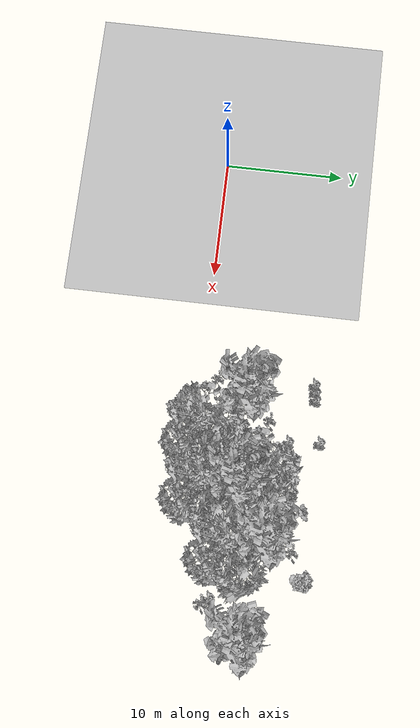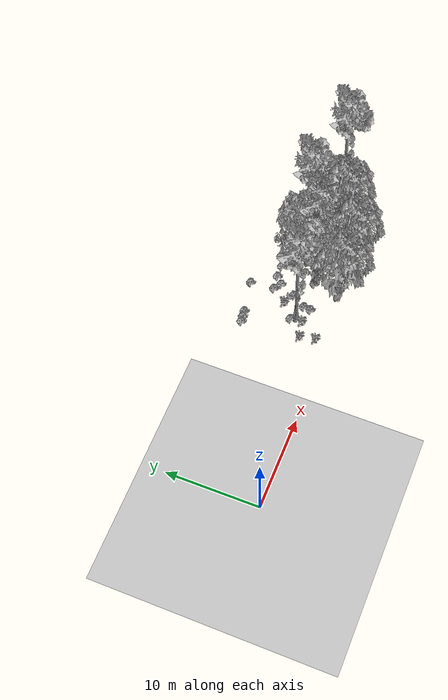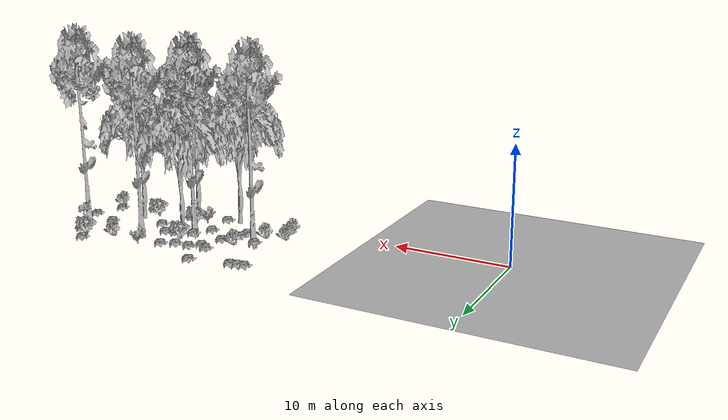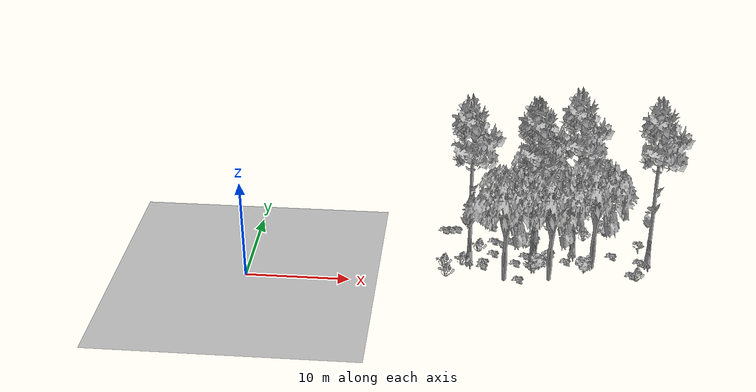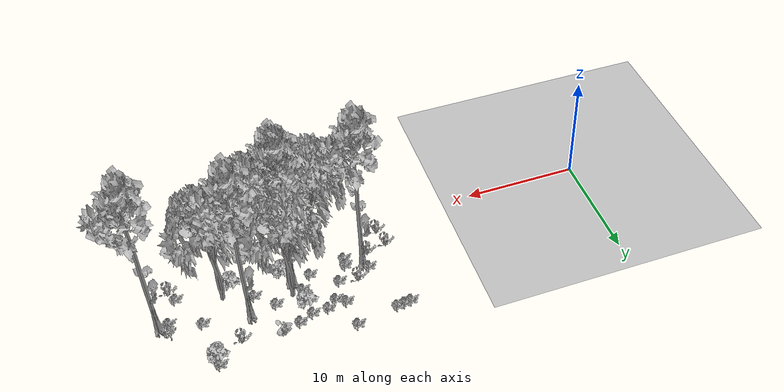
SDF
<sdf version="1.7">
 <world name="default">
  <model name="ground_plane">
   <static>1</static>
   <link name="link">
    <collision name="collision">
     <pose>-50 0 0 0 -0 0</pose>
     <geometry><plane><normal>0 0 1</normal><size>80 80</size></plane></geometry>
     <surface><contact><ode><min_depth>0.01</min_depth><max_vel>0</max_vel></ode></contact></surface>
    </collision>
    <visual name="grass">
     <cast_shadows>0</cast_shadows>
     <geometry>
      <mesh>
       <scale>0.46714285714285714 0.46714285714285714 0.1</scale>
       <uri>file://grass_plane/meshes/grass_plane.dae</uri>
      </mesh>
     </geometry>
    </visual>
   </link>
  </model>
  <model name="Tree 135">
   <static>1</static>
   <pose>33.02459482543969 3.914709650286497 0 1.57079 -0 0</pose>
   <link name="link">
    <collision name="collision">
     <geometry><mesh><scale>3.5 5 3.5</scale><uri>model://tree_2/meshes/tree_2.obj</uri></mesh></geometry>
    </collision>
    <visual name="visual">
     <geometry><mesh><scale>3.5 5 3.5</scale><uri>model://tree_2/meshes/tree_2.obj</uri></mesh></geometry>
    </visual>
   </link>
  </model>
  <model name="Tree 212">
   <static>1</static>
   <pose>21.272354102123536 4.31875726385158 0 1.57079 -0 0</pose>
   <link name="link">
    <collision name="collision">
     <geometry><mesh><scale>3.5 5 3.5</scale><uri>model://tree_9/meshes/tree_9.obj</uri></mesh></geometry>
    </collision>
    <visual name="visual">
     <geometry><mesh><scale>3.5 5 3.5</scale><uri>model://tree_9/meshes/tree_9.obj</uri></mesh></geometry>
    </visual>
   </link>
  </model>
  <model name="Tree 239">
   <static>1</static>
   <pose>31.347908272735964 6.564906676583853 0 1.57079 -0 0</pose>
   <link name="link">
    <collision name="collision">
     <geometry><mesh><scale>3.5 5 3.5</scale><uri>model://tree_9/meshes/tree_9.obj</uri></mesh></geometry>
    </collision>
    <visual name="visual">
     <geometry><mesh><scale>3.5 5 3.5</scale><uri>model://tree_9/meshes/tree_9.obj</uri></mesh></geometry>
    </visual>
   </link>
  </model>
  <model name="Tree 269">
   <static>1</static>
   <pose>38.54994354440663 5.279831843803549 0 1.57079 -0 0</pose>
   <link name="link">
    <collision name="collision">
     <geometry><mesh><scale>3.5 5 3.5</scale><uri>model://tree_9/meshes/tree_9.obj</uri></mesh></geometry>
    </collision>
    <visual name="visual">
     <geometry><mesh><scale>3.5 5 3.5</scale><uri>model://tree_9/meshes/tree_9.obj</uri></mesh></geometry>
    </visual>
   </link>
  </model>
  <model name="Tree 424">
   <static>1</static>
   <pose>27.507316173532317 4.1406866113874585 0 1.57079 -0 0</pose>
   <link name="link">
    <collision name="collision">
     <geometry><mesh><scale>3.5 5 3.5</scale><uri>model://tree_9/meshes/tree_9.obj</uri></mesh></geometry>
    </collision>
    <visual name="visual">
     <geometry><mesh><scale>3.5 5 3.5</scale><uri>model://tree_9/meshes/tree_9.obj</uri></mesh></geometry>
    </visual>
   </link>
  </model>
  <model name="Tree 468">
   <static>1</static>
   <pose>27.314680647240678 4.375040638981993 0 1.57079 -0 0</pose>
   <link name="link">
    <collision name="collision">
     <geometry><mesh><scale>3.5 5 3.5</scale><uri>model://tree_9/meshes/tree_9.obj</uri></mesh></geometry>
    </collision>
    <visual name="visual">
     <geometry><mesh><scale>3.5 5 3.5</scale><uri>model://tree_9/meshes/tree_9.obj</uri></mesh></geometry>
    </visual>
   </link>
  </model>
  <model name="Tree 510">
   <static>1</static>
   <pose>27.550290301177284 5.5813447568156676 0 1.57079 -0 0</pose>
   <link name="link">
    <collision name="collision">
     <geometry><mesh><scale>3.5 5 3.5</scale><uri>model://tree_2/meshes/tree_2.obj</uri></mesh></geometry>
    </collision>
    <visual name="visual">
     <geometry><mesh><scale>3.5 5 3.5</scale><uri>model://tree_2/meshes/tree_2.obj</uri></mesh></geometry>
    </visual>
   </link>
  </model>
  <model name="Tree 555">
   <static>1</static>
   <pose>28.840039015121903 1.546803626603321 0 1.57079 -0 0</pose>
   <link name="link">
    <collision name="collision">
     <geometry><mesh><scale>3.5 5 3.5</scale><uri>model://tree_2/meshes/tree_2.obj</uri></mesh></geometry>
    </collision>
    <visual name="visual">
     <geometry><mesh><scale>3.5 5 3.5</scale><uri>model://tree_2/meshes/tree_2.obj</uri></mesh></geometry>
    </visual>
   </link>
  </model>
  <model name="Tree 629">
   <static>1</static>
   <pose>24.586142778314482 1.1584044242650577 0 1.57079 -0 0</pose>
   <link name="link">
    <collision name="collision">
     <geometry><mesh><scale>3.5 5 3.5</scale><uri>model://tree_2/meshes/tree_2.obj</uri></mesh></geometry>
    </collision>
    <visual name="visual">
     <geometry><mesh><scale>3.5 5 3.5</scale><uri>model://tree_2/meshes/tree_2.obj</uri></mesh></geometry>
    </visual>
   </link>
  </model>
  <model name="Bush 1">
   <static>1</static>
   <pose>37.68952850002576 5.004745101341186 0 1.57079 -0 0</pose>
   <link name="link">
    <collision name="collision">
     <geometry><mesh><scale>2 2 2</scale><uri>model://bush_2/meshes/bush_2.obj</uri></mesh></geometry>
     <surface><contact><collide_without_contact>false</collide_without_contact></contact></surface>
    </collision>
    <visual name="visual">
     <geometry><mesh><scale>2 2 2</scale><uri>model://bush_2/meshes/bush_2.obj</uri></mesh></geometry>
    </visual>
   </link>
  </model>
  <model name="Bush 2">
   <static>1</static>
   <pose>34.55324947984364 10.34870113742901 0 1.57079 -0 0</pose>
   <link name="link">
    <collision name="collision">
     <geometry><mesh><scale>2 2 2</scale><uri>model://bush_2/meshes/bush_2.obj</uri></mesh></geometry>
     <surface><contact><collide_without_contact>false</collide_without_contact></contact></surface>
    </collision>
    <visual name="visual">
     <geometry><mesh><scale>2 2 2</scale><uri>model://bush_2/meshes/bush_2.obj</uri></mesh></geometry>
    </visual>
   </link>
  </model>
  <model name="Bush 4">
   <static>1</static>
   <pose>26.000541124913084 1.116691493696905 0 1.57079 -0 0</pose>
   <link name="link">
    <collision name="collision">
     <geometry><mesh><scale>2 2 2</scale><uri>model://bush_2/meshes/bush_2.obj</uri></mesh></geometry>
     <surface><contact><collide_without_contact>false</collide_without_contact></contact></surface>
    </collision>
    <visual name="visual">
     <geometry><mesh><scale>2 2 2</scale><uri>model://bush_2/meshes/bush_2.obj</uri></mesh></geometry>
    </visual>
   </link>
  </model>
  <model name="Bush 7">
   <static>1</static>
   <pose>36.74847818797181 2.6829474337926627 0 1.57079 -0 0</pose>
   <link name="link">
    <collision name="collision">
     <geometry><mesh><scale>2 2 2</scale><uri>model://bush_2/meshes/bush_2.obj</uri></mesh></geometry>
     <surface><contact><collide_without_contact>false</collide_without_contact></contact></surface>
    </collision>
    <visual name="visual">
     <geometry><mesh><scale>2 2 2</scale><uri>model://bush_2/meshes/bush_2.obj</uri></mesh></geometry>
    </visual>
   </link>
  </model>
  <model name="Bush 61">
   <static>1</static>
   <pose>25.728525860686958 3.9062681532716397 0 1.57079 -0 0</pose>
   <link name="link">
    <collision name="collision">
     <geometry><mesh><scale>2 2 2</scale><uri>model://bush_2/meshes/bush_2.obj</uri></mesh></geometry>
     <surface><contact><collide_without_contact>false</collide_without_contact></contact></surface>
    </collision>
    <visual name="visual">
     <geometry><mesh><scale>2 2 2</scale><uri>model://bush_2/meshes/bush_2.obj</uri></mesh></geometry>
    </visual>
   </link>
  </model>
  <model name="Bush 117">
   <static>1</static>
   <pose>24.400544270730492 7.202140850918383 0 1.57079 -0 0</pose>
   <link name="link">
    <collision name="collision">
     <geometry><mesh><scale>2 2 2</scale><uri>model://bush_2/meshes/bush_2.obj</uri></mesh></geometry>
     <surface><contact><collide_without_contact>false</collide_without_contact></contact></surface>
    </collision>
    <visual name="visual">
     <geometry><mesh><scale>2 2 2</scale><uri>model://bush_2/meshes/bush_2.obj</uri></mesh></geometry>
    </visual>
   </link>
  </model>
  <model name="Bush 148">
   <static>1</static>
   <pose>22.66373690897622 3.950855394498177 0 1.57079 -0 0</pose>
   <link name="link">
    <collision name="collision">
     <geometry><mesh><scale>2 2 2</scale><uri>model://bush_2/meshes/bush_2.obj</uri></mesh></geometry>
     <surface><contact><collide_without_contact>false</collide_without_contact></contact></surface>
    </collision>
    <visual name="visual">
     <geometry><mesh><scale>2 2 2</scale><uri>model://bush_2/meshes/bush_2.obj</uri></mesh></geometry>
    </visual>
   </link>
  </model>
  <model name="Bush 191">
   <static>1</static>
   <pose>18.837473086576743 2.9863567688491273 0 1.57079 -0 0</pose>
   <link name="link">
    <collision name="collision">
     <geometry><mesh><scale>2 2 2</scale><uri>model://bush_4/meshes/bush_4.obj</uri></mesh></geometry>
     <surface><contact><collide_without_contact>false</collide_without_contact></contact></surface>
    </collision>
    <visual name="visual">
     <geometry><mesh><scale>2 2 2</scale><uri>model://bush_4/meshes/bush_4.obj</uri></mesh></geometry>
    </visual>
   </link>
  </model>
  <model name="Bush 210">
   <static>1</static>
   <pose>26.531364223439923 7.948129697994062 0 1.57079 -0 0</pose>
   <link name="link">
    <collision name="collision">
     <geometry><mesh><scale>2 2 2</scale><uri>model://bush_2/meshes/bush_2.obj</uri></mesh></geometry>
     <surface><contact><collide_without_contact>false</collide_without_contact></contact></surface>
    </collision>
    <visual name="visual">
     <geometry><mesh><scale>2 2 2</scale><uri>model://bush_2/meshes/bush_2.obj</uri></mesh></geometry>
    </visual>
   </link>
  </model>
  <model name="Bush 214">
   <static>1</static>
   <pose>29.3766264880733 9.427055891839743 0 1.57079 -0 0</pose>
   <link name="link">
    <collision name="collision">
     <geometry><mesh><scale>2 2 2</scale><uri>model://bush_0/meshes/bush_0.obj</uri></mesh></geometry>
     <surface><contact><collide_without_contact>false</collide_without_contact></contact></surface>
    </collision>
    <visual name="visual">
     <geometry><mesh><scale>2 2 2</scale><uri>model://bush_0/meshes/bush_0.obj</uri></mesh></geometry>
    </visual>
   </link>
  </model>
  <model name="Bush 217">
   <static>1</static>
   <pose>19.149892147713743 1.3353903246879497 0 1.57079 -0 0</pose>
   <link name="link">
    <collision name="collision">
     <geometry><mesh><scale>2 2 2</scale><uri>model://bush_4/meshes/bush_4.obj</uri></mesh></geometry>
     <surface><contact><collide_without_contact>false</collide_without_contact></contact></surface>
    </collision>
    <visual name="visual">
     <geometry><mesh><scale>2 2 2</scale><uri>model://bush_4/meshes/bush_4.obj</uri></mesh></geometry>
    </visual>
   </link>
  </model>
  <model name="Bush 233">
   <static>1</static>
   <pose>26.813499344383075 6.9108174098752855 0 1.57079 -0 0</pose>
   <link name="link">
    <collision name="collision">
     <geometry><mesh><scale>2 2 2</scale><uri>model://bush_1/meshes/bush_1.obj</uri></mesh></geometry>
     <surface><contact><collide_without_contact>false</collide_without_contact></contact></surface>
    </collision>
    <visual name="visual">
     <geometry><mesh><scale>2 2 2</scale><uri>model://bush_1/meshes/bush_1.obj</uri></mesh></geometry>
    </visual>
   </link>
  </model>
  <model name="Bush 242">
   <static>1</static>
   <pose>22.142746882319422 5.955801117196771 0 1.57079 -0 0</pose>
   <link name="link">
    <collision name="collision">
     <geometry><mesh><scale>2 2 2</scale><uri>model://bush_4/meshes/bush_4.obj</uri></mesh></geometry>
     <surface><contact><collide_without_contact>false</collide_without_contact></contact></surface>
    </collision>
    <visual name="visual">
     <geometry><mesh><scale>2 2 2</scale><uri>model://bush_4/meshes/bush_4.obj</uri></mesh></geometry>
    </visual>
   </link>
  </model>
  <model name="Bush 245">
   <static>1</static>
   <pose>32.27569824734678 2.9146224821429385 0 1.57079 -0 0</pose>
   <link name="link">
    <collision name="collision">
     <geometry><mesh><scale>2 2 2</scale><uri>model://bush_1/meshes/bush_1.obj</uri></mesh></geometry>
     <surface><contact><collide_without_contact>false</collide_without_contact></contact></surface>
    </collision>
    <visual name="visual">
     <geometry><mesh><scale>2 2 2</scale><uri>model://bush_1/meshes/bush_1.obj</uri></mesh></geometry>
    </visual>
   </link>
  </model>
  <model name="Bush 253">
   <static>1</static>
   <pose>29.099617872725645 5.994162663417157 0 1.57079 -0 0</pose>
   <link name="link">
    <collision name="collision">
     <geometry><mesh><scale>2 2 2</scale><uri>model://bush_2/meshes/bush_2.obj</uri></mesh></geometry>
     <surface><contact><collide_without_contact>false</collide_without_contact></contact></surface>
    </collision>
    <visual name="visual">
     <geometry><mesh><scale>2 2 2</scale><uri>model://bush_2/meshes/bush_2.obj</uri></mesh></geometry>
    </visual>
   </link>
  </model>
  <model name="Bush 306">
   <static>1</static>
   <pose>20.789229051074372 4.769375056752885 0 1.57079 -0 0</pose>
   <link name="link">
    <collision name="collision">
     <geometry><mesh><scale>2 2 2</scale><uri>model://bush_2/meshes/bush_2.obj</uri></mesh></geometry>
     <surface><contact><collide_without_contact>false</collide_without_contact></contact></surface>
    </collision>
    <visual name="visual">
     <geometry><mesh><scale>2 2 2</scale><uri>model://bush_2/meshes/bush_2.obj</uri></mesh></geometry>
    </visual>
   </link>
  </model>
  <model name="Bush 318">
   <static>1</static>
   <pose>23.414848374290585 10.305393969143566 0 1.57079 -0 0</pose>
   <link name="link">
    <collision name="collision">
     <geometry><mesh><scale>2 2 2</scale><uri>model://bush_2/meshes/bush_2.obj</uri></mesh></geometry>
     <surface><contact><collide_without_contact>false</collide_without_contact></contact></surface>
    </collision>
    <visual name="visual">
     <geometry><mesh><scale>2 2 2</scale><uri>model://bush_2/meshes/bush_2.obj</uri></mesh></geometry>
    </visual>
   </link>
  </model>
  <model name="Bush 319">
   <static>1</static>
   <pose>25.209897731945652 7.903272171021584 0 1.57079 -0 0</pose>
   <link name="link">
    <collision name="collision">
     <geometry><mesh><scale>2 2 2</scale><uri>model://bush_2/meshes/bush_2.obj</uri></mesh></geometry>
     <surface><contact><collide_without_contact>false</collide_without_contact></contact></surface>
    </collision>
    <visual name="visual">
     <geometry><mesh><scale>2 2 2</scale><uri>model://bush_2/meshes/bush_2.obj</uri></mesh></geometry>
    </visual>
   </link>
  </model>
  <model name="Bush 347">
   <static>1</static>
   <pose>35.09998045018763 5.903794019706737 0 1.57079 -0 0</pose>
   <link name="link">
    <collision name="collision">
     <geometry><mesh><scale>2 2 2</scale><uri>model://bush_2/meshes/bush_2.obj</uri></mesh></geometry>
     <surface><contact><collide_without_contact>false</collide_without_contact></contact></surface>
    </collision>
    <visual name="visual">
     <geometry><mesh><scale>2 2 2</scale><uri>model://bush_2/meshes/bush_2.obj</uri></mesh></geometry>
    </visual>
   </link>
  </model>
  <model name="Bush 380">
   <static>1</static>
   <pose>22.570394203210142 3.181818471752642 0 1.57079 -0 0</pose>
   <link name="link">
    <collision name="collision">
     <geometry><mesh><scale>2 2 2</scale><uri>model://bush_2/meshes/bush_2.obj</uri></mesh></geometry>
     <surface><contact><collide_without_contact>false</collide_without_contact></contact></surface>
    </collision>
    <visual name="visual">
     <geometry><mesh><scale>2 2 2</scale><uri>model://bush_2/meshes/bush_2.obj</uri></mesh></geometry>
    </visual>
   </link>
  </model>
  <model name="Bush 381">
   <static>1</static>
   <pose>19.224195643822007 9.548439126226889 0 1.57079 -0 0</pose>
   <link name="link">
    <collision name="collision">
     <geometry><mesh><scale>2 2 2</scale><uri>model://bush_2/meshes/bush_2.obj</uri></mesh></geometry>
     <surface><contact><collide_without_contact>false</collide_without_contact></contact></surface>
    </collision>
    <visual name="visual">
     <geometry><mesh><scale>2 2 2</scale><uri>model://bush_2/meshes/bush_2.obj</uri></mesh></geometry>
    </visual>
   </link>
  </model>
  <model name="Bush 388">
   <static>1</static>
   <pose>37.762934463153684 6.756132051352701 0 1.57079 -0 0</pose>
   <link name="link">
    <collision name="collision">
     <geometry><mesh><scale>2 2 2</scale><uri>model://bush_5/meshes/bush_5.obj</uri></mesh></geometry>
     <surface><contact><collide_without_contact>false</collide_without_contact></contact></surface>
    </collision>
    <visual name="visual">
     <geometry><mesh><scale>2 2 2</scale><uri>model://bush_5/meshes/bush_5.obj</uri></mesh></geometry>
    </visual>
   </link>
  </model>
  <model name="Bush 391">
   <static>1</static>
   <pose>27.276164337625218 2.5060931677571503 0 1.57079 -0 0</pose>
   <link name="link">
    <collision name="collision">
     <geometry><mesh><scale>2 2 2</scale><uri>model://bush_0/meshes/bush_0.obj</uri></mesh></geometry>
     <surface><contact><collide_without_contact>false</collide_without_contact></contact></surface>
    </collision>
    <visual name="visual">
     <geometry><mesh><scale>2 2 2</scale><uri>model://bush_0/meshes/bush_0.obj</uri></mesh></geometry>
    </visual>
   </link>
  </model>
  <model name="Bush 409">
   <static>1</static>
   <pose>19.876091121878623 9.619626892052786 0 1.57079 -0 0</pose>
   <link name="link">
    <collision name="collision">
     <geometry><mesh><scale>2 2 2</scale><uri>model://bush_2/meshes/bush_2.obj</uri></mesh></geometry>
     <surface><contact><collide_without_contact>false</collide_without_contact></contact></surface>
    </collision>
    <visual name="visual">
     <geometry><mesh><scale>2 2 2</scale><uri>model://bush_2/meshes/bush_2.obj</uri></mesh></geometry>
    </visual>
   </link>
  </model>
  <model name="Bush 442">
   <static>1</static>
   <pose>23.616938354703073 5.451782041333175 0 1.57079 -0 0</pose>
   <link name="link">
    <collision name="collision">
     <geometry><mesh><scale>2 2 2</scale><uri>model://bush_2/meshes/bush_2.obj</uri></mesh></geometry>
     <surface><contact><collide_without_contact>false</collide_without_contact></contact></surface>
    </collision>
    <visual name="visual">
     <geometry><mesh><scale>2 2 2</scale><uri>model://bush_2/meshes/bush_2.obj</uri></mesh></geometry>
    </visual>
   </link>
  </model>
  <model name="Bush 444">
   <static>1</static>
   <pose>20.59278670382637 3.396920954123132 0 1.57079 -0 0</pose>
   <link name="link">
    <collision name="collision">
     <geometry><mesh><scale>2 2 2</scale><uri>model://bush_4/meshes/bush_4.obj</uri></mesh></geometry>
     <surface><contact><collide_without_contact>false</collide_without_contact></contact></surface>
    </collision>
    <visual name="visual">
     <geometry><mesh><scale>2 2 2</scale><uri>model://bush_4/meshes/bush_4.obj</uri></mesh></geometry>
    </visual>
   </link>
  </model>
  <model name="Bush 446">
   <static>1</static>
   <pose>18.62780019461936 9.448774725706173 0 1.57079 -0 0</pose>
   <link name="link">
    <collision name="collision">
     <geometry><mesh><scale>2 2 2</scale><uri>model://bush_2/meshes/bush_2.obj</uri></mesh></geometry>
     <surface><contact><collide_without_contact>false</collide_without_contact></contact></surface>
    </collision>
    <visual name="visual">
     <geometry><mesh><scale>2 2 2</scale><uri>model://bush_2/meshes/bush_2.obj</uri></mesh></geometry>
    </visual>
   </link>
  </model>
  <model name="Bush 472">
   <static>1</static>
   <pose>32.49066838954394 8.815131055014433 0 1.57079 -0 0</pose>
   <link name="link">
    <collision name="collision">
     <geometry><mesh><scale>2 2 2</scale><uri>model://bush_4/meshes/bush_4.obj</uri></mesh></geometry>
     <surface><contact><collide_without_contact>false</collide_without_contact></contact></surface>
    </collision>
    <visual name="visual">
     <geometry><mesh><scale>2 2 2</scale><uri>model://bush_4/meshes/bush_4.obj</uri></mesh></geometry>
    </visual>
   </link>
  </model>
  <model name="Bush 529">
   <static>1</static>
   <pose>23.63091790559004 7.7311539397493405 0 1.57079 -0 0</pose>
   <link name="link">
    <collision name="collision">
     <geometry><mesh><scale>2 2 2</scale><uri>model://bush_2/meshes/bush_2.obj</uri></mesh></geometry>
     <surface><contact><collide_without_contact>false</collide_without_contact></contact></surface>
    </collision>
    <visual name="visual">
     <geometry><mesh><scale>2 2 2</scale><uri>model://bush_2/meshes/bush_2.obj</uri></mesh></geometry>
    </visual>
   </link>
  </model>
  <model name="Bush 533">
   <static>1</static>
   <pose>27.700549510276886 8.478070894803842 0 1.57079 -0 0</pose>
   <link name="link">
    <collision name="collision">
     <geometry><mesh><scale>2 2 2</scale><uri>model://bush_2/meshes/bush_2.obj</uri></mesh></geometry>
     <surface><contact><collide_without_contact>false</collide_without_contact></contact></surface>
    </collision>
    <visual name="visual">
     <geometry><mesh><scale>2 2 2</scale><uri>model://bush_2/meshes/bush_2.obj</uri></mesh></geometry>
    </visual>
   </link>
  </model>
  <model name="Bush 563">
   <static>1</static>
   <pose>26.705194734046785 5.284122512901639 0 1.57079 -0 0</pose>
   <link name="link">
    <collision name="collision">
     <geometry><mesh><scale>2 2 2</scale><uri>model://bush_2/meshes/bush_2.obj</uri></mesh></geometry>
     <surface><contact><collide_without_contact>false</collide_without_contact></contact></surface>
    </collision>
    <visual name="visual">
     <geometry><mesh><scale>2 2 2</scale><uri>model://bush_2/meshes/bush_2.obj</uri></mesh></geometry>
    </visual>
   </link>
  </model>
  <model name="Bush 588">
   <static>1</static>
   <pose>37.20672619590323 2.0052842663067665 0 1.57079 -0 0</pose>
   <link name="link">
    <collision name="collision">
     <geometry><mesh><scale>2 2 2</scale><uri>model://bush_4/meshes/bush_4.obj</uri></mesh></geometry>
     <surface><contact><collide_without_contact>false</collide_without_contact></contact></surface>
    </collision>
    <visual name="visual">
     <geometry><mesh><scale>2 2 2</scale><uri>model://bush_4/meshes/bush_4.obj</uri></mesh></geometry>
    </visual>
   </link>
  </model>
  <model name="Bush 603">
   <static>1</static>
   <pose>34.63002590681023 9.710144363885114 0 1.57079 -0 0</pose>
   <link name="link">
    <collision name="collision">
     <geometry><mesh><scale>2 2 2</scale><uri>model://bush_1/meshes/bush_1.obj</uri></mesh></geometry>
     <surface><contact><collide_without_contact>false</collide_without_contact></contact></surface>
    </collision>
    <visual name="visual">
     <geometry><mesh><scale>2 2 2</scale><uri>model://bush_1/meshes/bush_1.obj</uri></mesh></geometry>
    </visual>
   </link>
  </model>
  <model name="Bush 609">
   <static>1</static>
   <pose>30.603662876272693 4.571650168654678 0 1.57079 -0 0</pose>
   <link name="link">
    <collision name="collision">
     <geometry><mesh><scale>2 2 2</scale><uri>model://bush_2/meshes/bush_2.obj</uri></mesh></geometry>
     <surface><contact><collide_without_contact>false</collide_without_contact></contact></surface>
    </collision>
    <visual name="visual">
     <geometry><mesh><scale>2 2 2</scale><uri>model://bush_2/meshes/bush_2.obj</uri></mesh></geometry>
    </visual>
   </link>
  </model>
  <model name="Bush 631">
   <static>1</static>
   <pose>27.984272756674883 3.140363354016422 0 1.57079 -0 0</pose>
   <link name="link">
    <collision name="collision">
     <geometry><mesh><scale>2 2 2</scale><uri>model://bush_1/meshes/bush_1.obj</uri></mesh></geometry>
     <surface><contact><collide_without_contact>false</collide_without_contact></contact></surface>
    </collision>
    <visual name="visual">
     <geometry><mesh><scale>2 2 2</scale><uri>model://bush_1/meshes/bush_1.obj</uri></mesh></geometry>
    </visual>
   </link>
  </model>
 </world>
</sdf>
